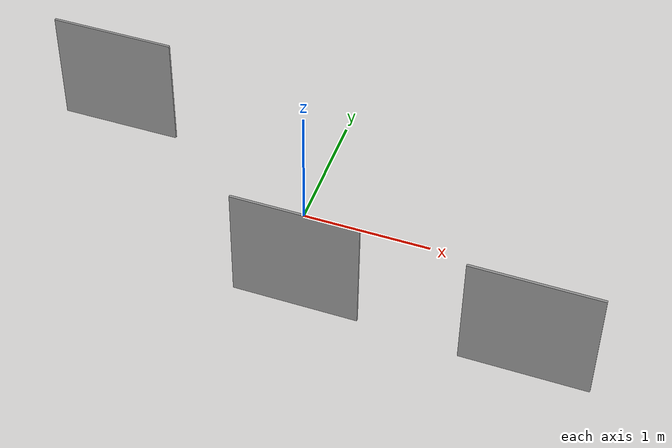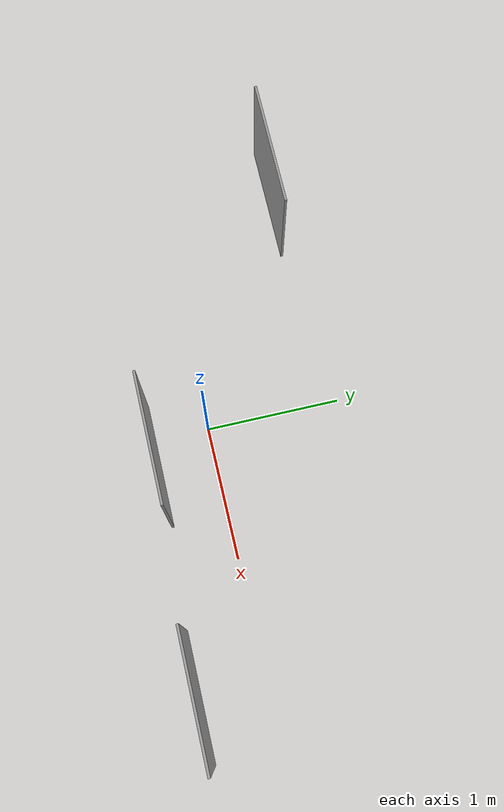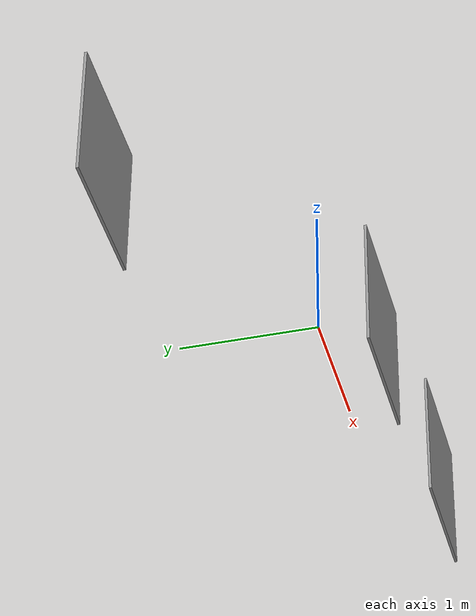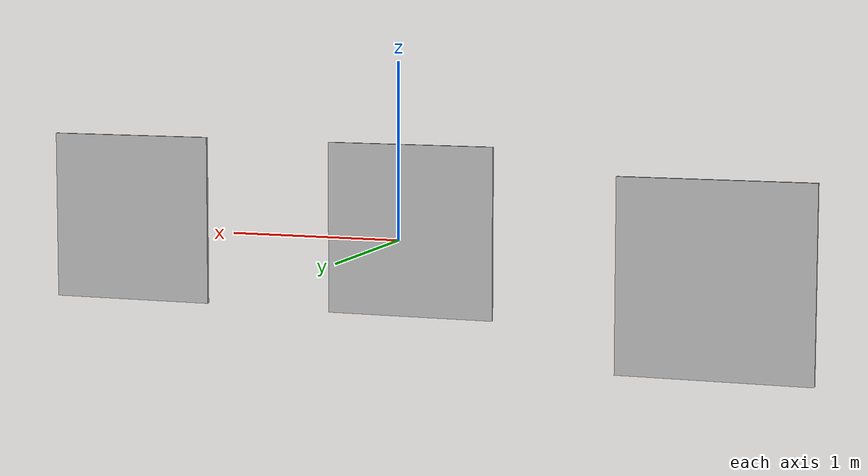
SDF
<?xml version='1.0'?>
<sdf version='1.7'>
  <model name='Maze_small_details'>
    <link name='link_0'>
      <inertial>
        <mass>0.0192004</mass>
        <inertia>
          <ixx>0.00320007</ixx>
          <ixy>0</ixy>
          <ixz>0</ixz>
          <iyy>0.00160062</iyy>
          <iyz>0</iyz>
          <izz>0.00160062</izz>
        </inertia>
        <pose>0 0 0 0 -0 0</pose>
      </inertial>
      <pose>-1.97051 0.936287 0 0 0 -1.5708</pose>
      <visual name='visual'>
        <pose>0 0 0 0 -0 0</pose>
        <geometry>
          <box>
            <size>0.019198 1 1</size>
          </box>
        </geometry>
        <material>
          <lighting>1</lighting>
          <script>
            <uri>file://media/materials/scripts/gazebo.material</uri>
            <name>Gazebo/Grey</name>
          </script>
          <shader type='pixel'/>
        </material>
        <transparency>0</transparency>
        <cast_shadows>1</cast_shadows>
      </visual>
      <collision name='collision'>
        <laser_retro>0</laser_retro>
        <max_contacts>10</max_contacts>
        <pose>0 0 0 0 -0 0</pose>
        <geometry>
          <box>
            <size>0.019198 1 1</size>
          </box>
        </geometry>
        <surface>
          <friction>
            <ode>
              <mu>1</mu>
              <mu2>1</mu2>
              <fdir1>0 0 0</fdir1>
              <slip1>0</slip1>
              <slip2>0</slip2>
            </ode>
            <torsional>
              <coefficient>1</coefficient>
              <patch_radius>0</patch_radius>
              <surface_radius>0</surface_radius>
              <use_patch_radius>1</use_patch_radius>
              <ode>
                <slip>0</slip>
              </ode>
            </torsional>
          </friction>
          <bounce>
            <restitution_coefficient>0</restitution_coefficient>
            <threshold>1e+06</threshold>
          </bounce>
          <contact>
            <collide_without_contact>0</collide_without_contact>
            <collide_without_contact_bitmask>1</collide_without_contact_bitmask>
            <collide_bitmask>1</collide_bitmask>
            <ode>
              <soft_cfm>0</soft_cfm>
              <soft_erp>0.2</soft_erp>
              <kp>1e+13</kp>
              <kd>1</kd>
              <max_vel>0.01</max_vel>
              <min_depth>0</min_depth>
            </ode>
            <bullet>
              <split_impulse>1</split_impulse>
              <split_impulse_penetration_threshold>-0.01</split_impulse_penetration_threshold>
              <soft_cfm>0</soft_cfm>
              <soft_erp>0.2</soft_erp>
              <kp>1e+13</kp>
              <kd>1</kd>
            </bullet>
          </contact>
        </surface>
      </collision>
    </link>
    <link name='link_0_clone'>
      <inertial>
        <mass>0.0192004</mass>
        <inertia>
          <ixx>0.00320007</ixx>
          <ixy>0</ixy>
          <ixz>0</ixz>
          <iyy>0.00160062</iyy>
          <iyz>0</iyz>
          <izz>0.00160062</izz>
        </inertia>
        <pose>0 0 0 0 -0 0</pose>
      </inertial>
      <pose>1.88677 -0.500401 0 0 0 -1.5708</pose>
      <visual name='visual'>
        <pose>0 0 0 0 -0 0</pose>
        <geometry>
          <box>
            <size>0.019198 1 1</size>
          </box>
        </geometry>
        <material>
          <lighting>1</lighting>
          <script>
            <uri>file://media/materials/scripts/gazebo.material</uri>
            <name>Gazebo/Grey</name>
          </script>
          <shader type='pixel'/>
        </material>
        <transparency>0</transparency>
        <cast_shadows>1</cast_shadows>
      </visual>
      <collision name='collision'>
        <laser_retro>0</laser_retro>
        <max_contacts>10</max_contacts>
        <pose>0 0 0 0 -0 0</pose>
        <geometry>
          <box>
            <size>0.019198 1 1</size>
          </box>
        </geometry>
        <surface>
          <friction>
            <ode>
              <mu>1</mu>
              <mu2>1</mu2>
              <fdir1>0 0 0</fdir1>
              <slip1>0</slip1>
              <slip2>0</slip2>
            </ode>
            <torsional>
              <coefficient>1</coefficient>
              <patch_radius>0</patch_radius>
              <surface_radius>0</surface_radius>
              <use_patch_radius>1</use_patch_radius>
              <ode>
                <slip>0</slip>
              </ode>
            </torsional>
          </friction>
          <bounce>
            <restitution_coefficient>0</restitution_coefficient>
            <threshold>1e+06</threshold>
          </bounce>
          <contact>
            <collide_without_contact>0</collide_without_contact>
            <collide_without_contact_bitmask>1</collide_without_contact_bitmask>
            <collide_bitmask>1</collide_bitmask>
            <ode>
              <soft_cfm>0</soft_cfm>
              <soft_erp>0.2</soft_erp>
              <kp>1e+13</kp>
              <kd>1</kd>
              <max_vel>0.01</max_vel>
              <min_depth>0</min_depth>
            </ode>
            <bullet>
              <split_impulse>1</split_impulse>
              <split_impulse_penetration_threshold>-0.01</split_impulse_penetration_threshold>
              <soft_cfm>0</soft_cfm>
              <soft_erp>0.2</soft_erp>
              <kp>1e+13</kp>
              <kd>1</kd>
            </bullet>
          </contact>
        </surface>
      </collision>
    </link>
    <link name='link_0_clone_0'>
      <inertial>
        <mass>0.0192004</mass>
        <inertia>
          <ixx>0.00320007</ixx>
          <ixy>0</ixy>
          <ixz>0</ixz>
          <iyy>0.00160062</iyy>
          <iyz>0</iyz>
          <izz>0.00160062</izz>
        </inertia>
        <pose>0 0 0 0 -0 0</pose>
      </inertial>
      <pose>0.083745 -0.435885 0 0 0 -1.5708</pose>
      <visual name='visual'>
        <pose>0 0 0 0 -0 0</pose>
        <geometry>
          <box>
            <size>0.019198 1 1</size>
          </box>
        </geometry>
        <material>
          <lighting>1</lighting>
          <script>
            <uri>file://media/materials/scripts/gazebo.material</uri>
            <name>Gazebo/Grey</name>
          </script>
          <shader type='pixel'/>
        </material>
        <transparency>0</transparency>
        <cast_shadows>1</cast_shadows>
      </visual>
      <collision name='collision'>
        <laser_retro>0</laser_retro>
        <max_contacts>10</max_contacts>
        <pose>0 0 0 0 -0 0</pose>
        <geometry>
          <box>
            <size>0.019198 1 1</size>
          </box>
        </geometry>
        <surface>
          <friction>
            <ode>
              <mu>1</mu>
              <mu2>1</mu2>
              <fdir1>0 0 0</fdir1>
              <slip1>0</slip1>
              <slip2>0</slip2>
            </ode>
            <torsional>
              <coefficient>1</coefficient>
              <patch_radius>0</patch_radius>
              <surface_radius>0</surface_radius>
              <use_patch_radius>1</use_patch_radius>
              <ode>
                <slip>0</slip>
              </ode>
            </torsional>
          </friction>
          <bounce>
            <restitution_coefficient>0</restitution_coefficient>
            <threshold>1e+06</threshold>
          </bounce>
          <contact>
            <collide_without_contact>0</collide_without_contact>
            <collide_without_contact_bitmask>1</collide_without_contact_bitmask>
            <collide_bitmask>1</collide_bitmask>
            <ode>
              <soft_cfm>0</soft_cfm>
              <soft_erp>0.2</soft_erp>
              <kp>1e+13</kp>
              <kd>1</kd>
              <max_vel>0.01</max_vel>
              <min_depth>0</min_depth>
            </ode>
            <bullet>
              <split_impulse>1</split_impulse>
              <split_impulse_penetration_threshold>-0.01</split_impulse_penetration_threshold>
              <soft_cfm>0</soft_cfm>
              <soft_erp>0.2</soft_erp>
              <kp>1e+13</kp>
              <kd>1</kd>
            </bullet>
          </contact>
        </surface>
      </collision>
    </link>
    <static>0</static>
    <allow_auto_disable>1</allow_auto_disable>
  </model>
</sdf>
